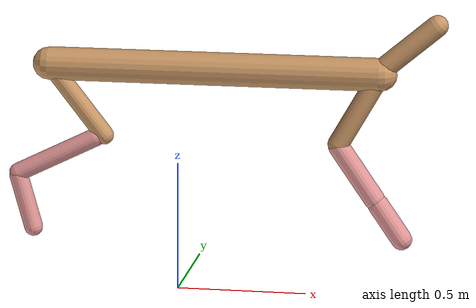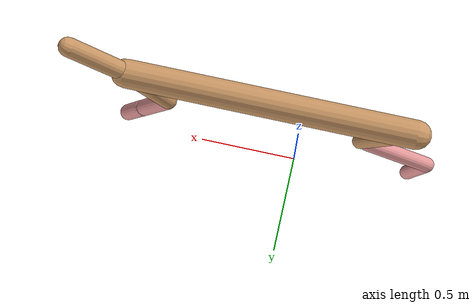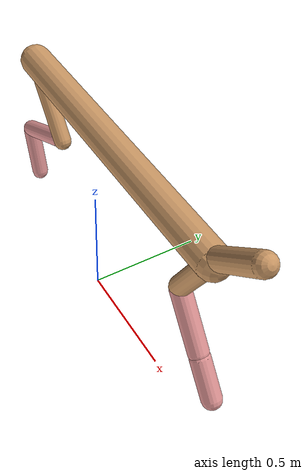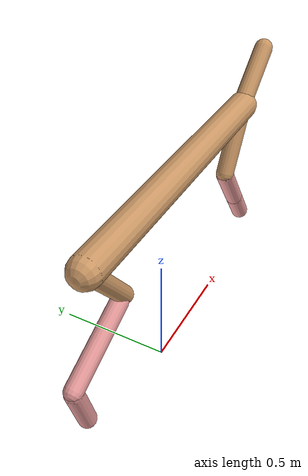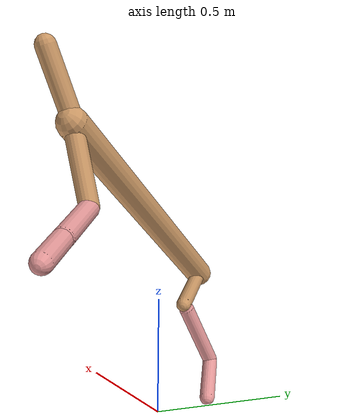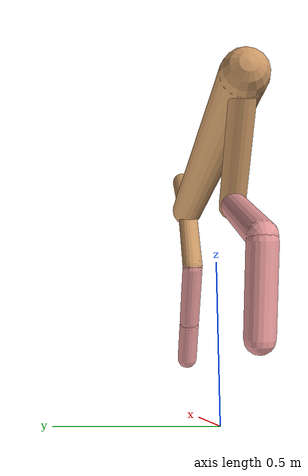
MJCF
<mujoco model="cheetah">
  <compiler angle="radian" coordinate="local" inertiafromgeom="true" settotalmass="14" />
  <default>
    <joint armature=".1" damping=".01" limited="true" solimplimit="0 .8 .03" solreflimit=".02 1" stiffness="8" />
    <geom conaffinity="0" condim="3" contype="1" friction="0.8 .1 .1" rgba="0.8 0.6 .4 1" solimp="0.0 0.8 0.01" solref="0.02 1" />
    <motor ctrllimited="true" ctrlrange="-1 1" />
  </default>
  <size nstack="300000" nuser_geom="1" />
  <option gravity="0 0 -9.81" timestep="0.01" />
  <worldbody>
    <body name="torso" pos="0.0 0.0 0.8788385966131765">
      <joint armature="0" axis="1 0 0" damping="0" limited="false" name="ignorex" pos="0 0 0" stiffness="0" type="slide" />
      <joint armature="0" axis="0 0 1" damping="0" limited="false" name="ignorez" pos="0 0 0" stiffness="0" type="slide" />
      <joint armature="0" axis="0 1 0" damping="0" limited="false" name="ignorey" pos="0 0 0" stiffness="0" type="hinge" />
      <geom fromto="-0.5 0.0 0.0 0.7839658849575935 0.0 0.0" name="torso" size="0.06415593276317895" type="capsule" />
      <geom axisangle="0 1 0 .87" name="head" pos="0.8839658849575934 0.0 0.1" size="0.04212330410109569 0.15" type="capsule" />

      <body name="bthigh" pos="-.5 0 0">
        <joint axis="0 1 0" damping="6" name="bthigh" pos="0 0 0" range="-.52 1.05" stiffness="240" type="hinge" />
        <geom axisangle="0 1 0 -3.8" name="bthigh" pos="0.11257888054445125 0.0 -0.14635254470778664" size="0.036049863206525784 0.16563089804569192" type="capsule" />
        <body name="bshin" pos="0.18515776108890253 0.0 -0.28270508941557326">
          <joint axis="0 1 0" damping="4.5" name="bshin" pos="0 0 0" range="-.785 .785" stiffness="180" type="hinge" />
          <geom axisangle="0 1 0 -2.03" name="bshin" pos="-0.15908914088291093 0.0 -0.07954457044145546" rgba="0.9 0.6 0.6 1" size="0.036049863206525784 0.17134230832312958" type="capsule" />
          <body name="bfoot" pos="-0.31817828176582186 0.0 -0.15908914088291093">
            <joint axis="0 1 0" damping="3" name="bfoot" pos="0 0 0" range="-.4 .785" stiffness="120" type="hinge" />
            <geom axisangle="0 1 0 -.27" name="bfoot" pos="0.03395176371409819 0.0 -0.10977736934225082" rgba="0.9 0.6 0.6 1" size="0.036049863206525784 0.10737451321582787" type="capsule" />
            <inertial mass="10" />
          </body>
        </body>
      </body>
      <body name="fthigh" pos="0.7839658849575935 0.0 0.0">
        <joint axis="0 1 0" damping="4.5" name="fthigh" pos="0 0 0" range="-1.5 0.8" stiffness="180" type="hinge" />
        <geom axisangle="0 1 0 .52" name="fthigh" pos="-0.08253644464589578 0.0 -0.14149104796439277" size="0.04068800449309133 0.15788026500999214" type="capsule" />
        <body name="fshin" pos="-0.16507288929179156 0.0 -0.28298209592878554">
          <joint axis="0 1 0" damping="3" name="fshin" pos="0 0 0" range="-1.2 1.1" stiffness="120" type="hinge" />
          <geom axisangle="0 1 0 -.6" name="fshin" pos="0.07660991710445443 0.0 -0.10607526983693691" rgba="0.9 0.6 0.6 1" size="0.04068800449309133 0.125829384143302" type="capsule" />
          <body name="ffoot" pos="0.15321983420890886 0.0 -0.21215053967387382">
            <joint axis="0 1 0" damping="1.5" name="ffoot" pos="0 0 0" range="-3.1 -0.3" stiffness="60" type="hinge" />
            <geom axisangle="0 1 0 -.6" name="ffoot" pos="0.05208115377791835 0.0 -0.08101512809898412" rgba="0.9 0.6 0.6 1" size="0.04068800449309133 0.0830948763210485" type="capsule" />
            <inertial mass="10" />
          </body>
        </body>
      </body>
    </body>
  </worldbody>
  <actuator>
    <motor gear="120" joint="bthigh" name="bthigh" />
    <motor gear="90" joint="bshin" name="bshin" />
    <motor gear="60" joint="bfoot" name="bfoot" />
    <motor gear="120" joint="fthigh" name="fthigh" />
    <motor gear="60" joint="fshin" name="fshin" />
    <motor gear="30" joint="ffoot" name="ffoot" />
  </actuator>
</mujoco>
